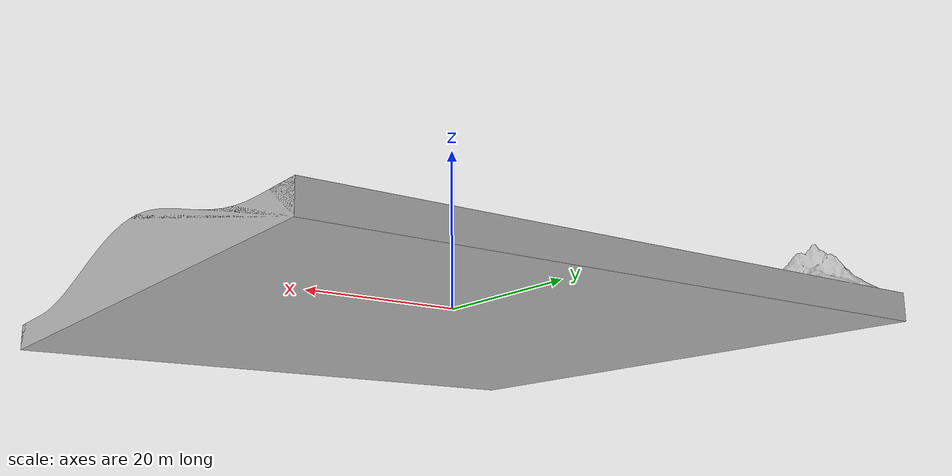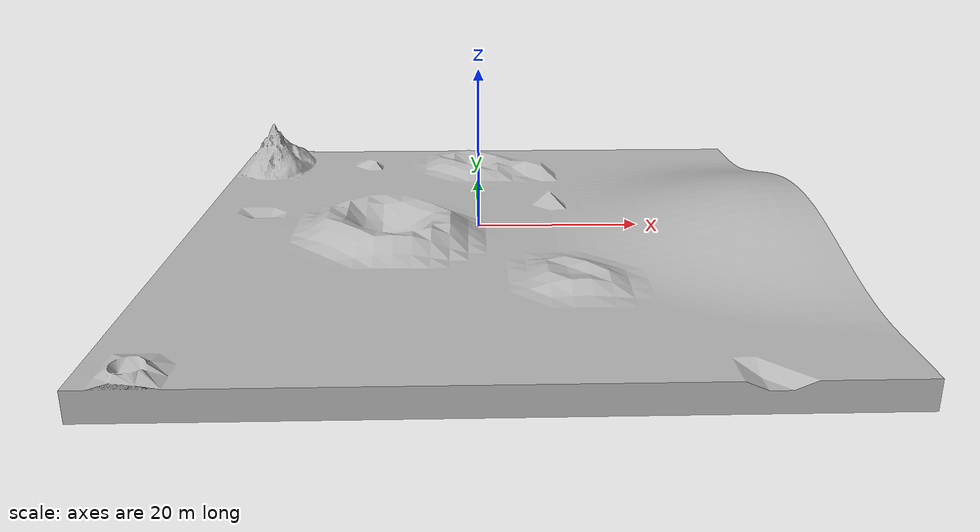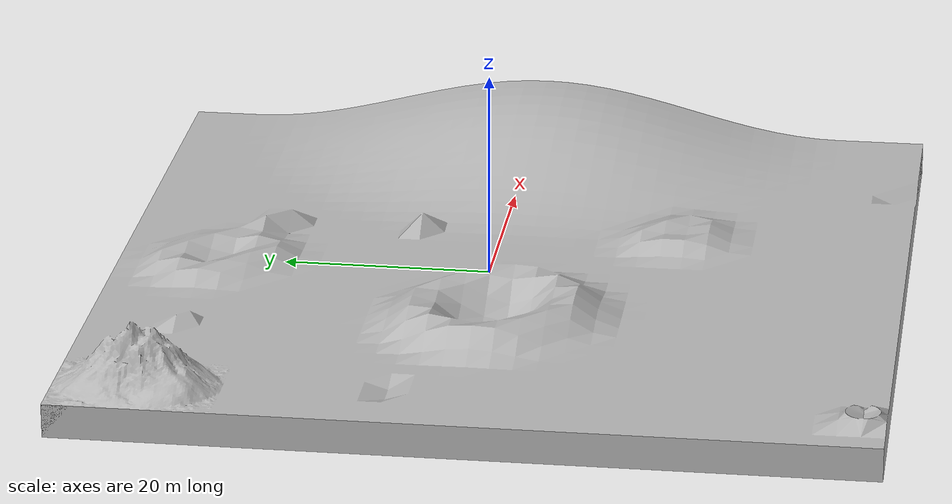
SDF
<?xml version="1.0" ?>
<sdf version="1.4">
    <model name="lunar_landscape">
      <pose>40 -40 0 0 0 0</pose>
        <static>true</static>
	  <link name="link">
	    <collision name="collision">
		<surface>
		  <friction>
		  <ode>
		    <mu>0.2</mu>
		  </ode>
		  </friction>
		  <contact>
		  <ode>
		    <soft_cfm>1</soft_cfm>
		    <kp>100000</kp>
		    <kd>1</kd>
		    <max_vel>0.000001</max_vel>
		    <min_depth>0.02</min_depth>
		  </ode>
		  </contact>
		</surface>

	      <geometry>
                <mesh>
		  <uri>model://lunar_landscape/meshes/lunar_landscape.dae</uri>
                    <scale>0.5 0.5 1</scale>
		</mesh>
	      </geometry>
	    </collision>

	    <visual name="visual">
	      <geometry>
            	<mesh>
		  <uri>file://models/lunar_landscape/meshes/lunar_landscape.dae</uri>
                  <scale>0.5 0.5 1</scale>
		</mesh>
	      </geometry>
        <material>
          <shader type='pixel'>
            <normal_map>__default__</normal_map>
          </shader>
	<lighting>1</lighting>
        </material>
        <pose frame=''>0 0 0 0 -0 0</pose>
        <cast_shadows>1</cast_shadows>
        <transparency>0</transparency>
        <meta>
          <layer>0</layer>
        </meta>
	    </visual>

    </link>
  </model>
</sdf>
